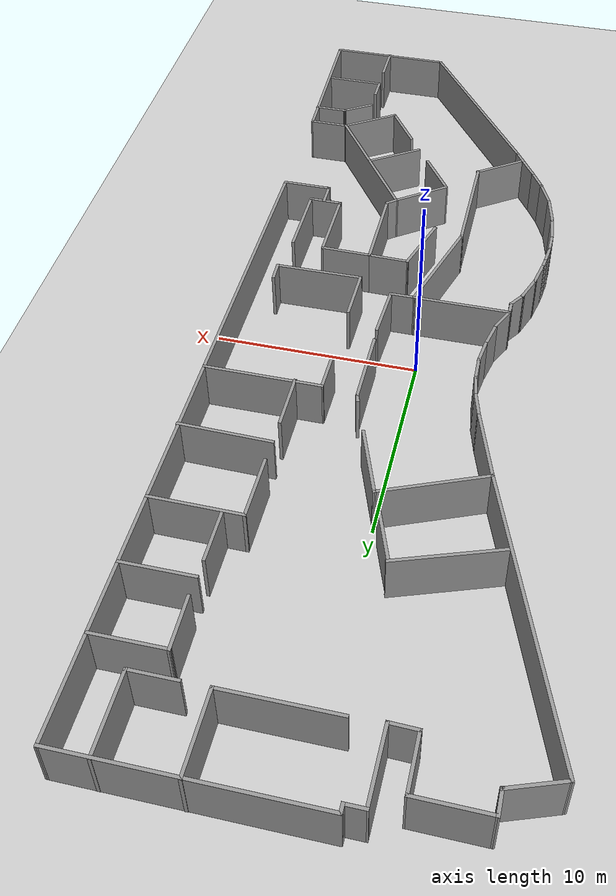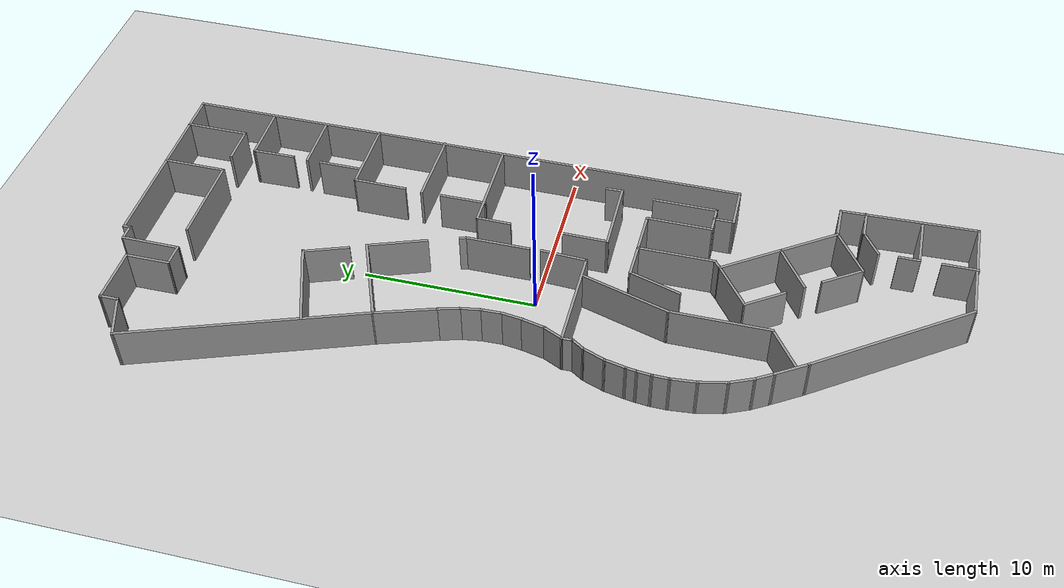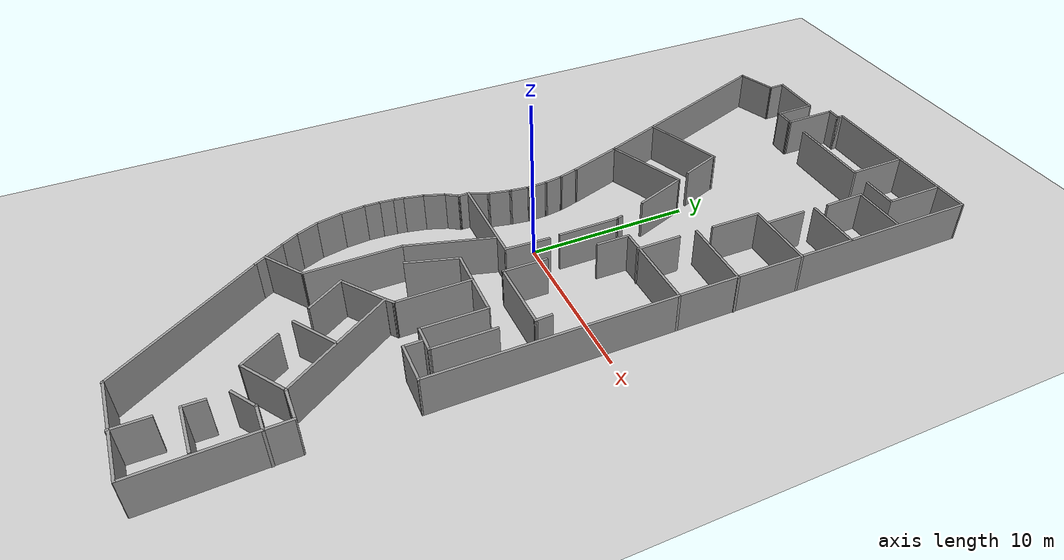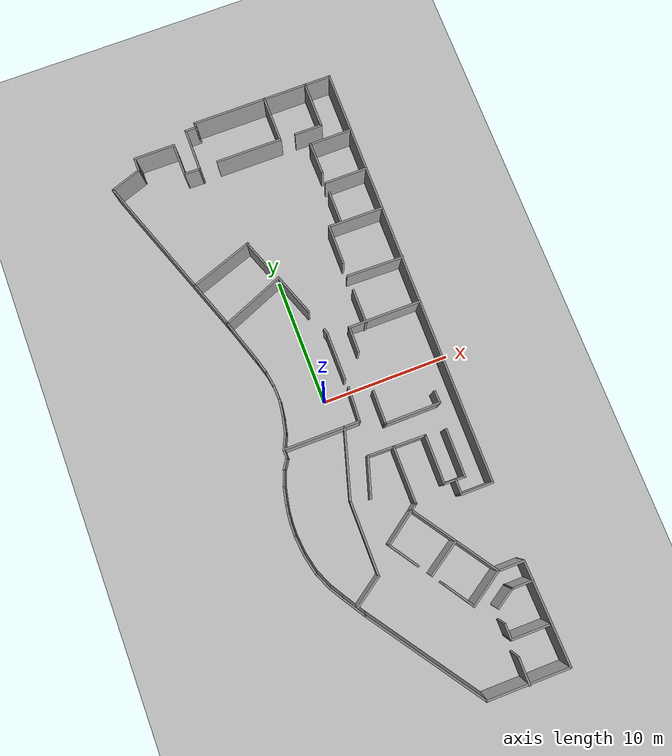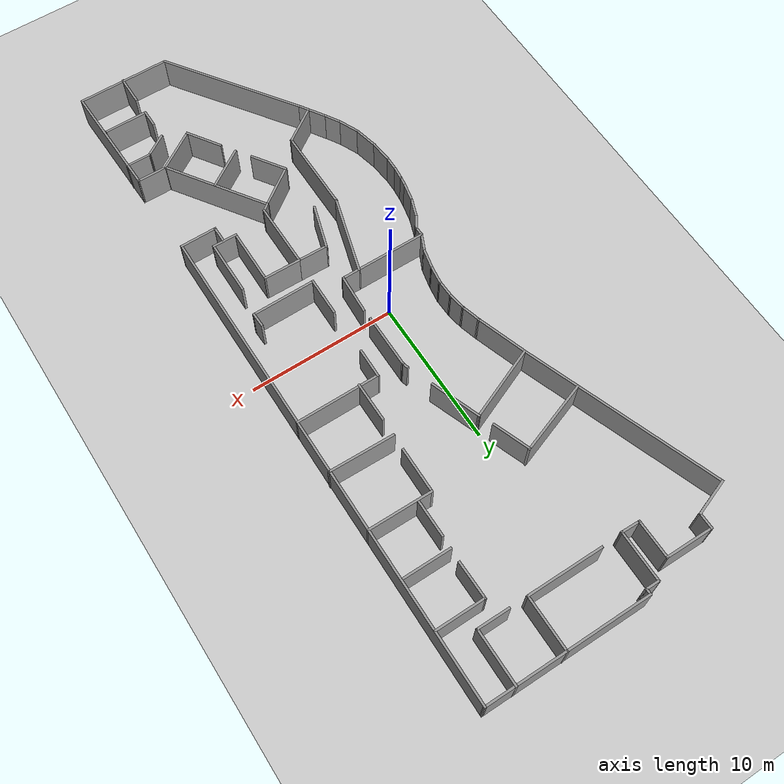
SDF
<?xml version="1.0" ?>
<sdf version="1.5">
  <world name="default">
    <include>
      <uri>model://ground_plane</uri>
    </include>
    <include>
      <uri>model://sun</uri>
    </include>
    <model name="office_map">
      <pose frame="">-0.033914 -0.016191 0 0 -0 0</pose>
      <link name="Wall_0">
        <collision name="Wall_0_Collision">
          <geometry>
            <box>
              <size>7.88022 0.15 2.5</size>
            </box>
          </geometry>
          <pose frame="">0 0 1.25 0 -0 0</pose>
        </collision>
        <visual name="Wall_0_Visual">
          <pose frame="">0 0 1.25 0 -0 0</pose>
          <geometry>
            <box>
              <size>7.88022 0.15 2.5</size>
            </box>
          </geometry>
          <material>
            <script>
              <uri>file://media/materials/scripts/gazebo.material</uri>
              <name>Gazebo/Grey</name>
            </script>
            <ambient>1 1 1 1</ambient>
          </material>
        </visual>
        <pose frame="">9.25987 -19.6495 0 0 -0 1.59958</pose>
      </link>
      <link name="Wall_1">
        <collision name="Wall_1_Collision">
          <geometry>
            <box>
              <size>2.09187 0.15 2.5</size>
            </box>
          </geometry>
          <pose frame="">0 0 1.25 0 -0 0</pose>
        </collision>
        <visual name="Wall_1_Visual">
          <pose frame="">0 0 1.25 0 -0 0</pose>
          <geometry>
            <box>
              <size>2.09187 0.15 2.5</size>
            </box>
          </geometry>
          <material>
            <script>
              <uri>file://media/materials/scripts/gazebo.material</uri>
              <name>Gazebo/Grey</name>
            </script>
            <ambient>1 1 1 1</ambient>
          </material>
        </visual>
        <pose frame="">8.17768 -15.786 0 0 -0 3.14159</pose>
      </link>
      <link name="Wall_10">
        <collision name="Wall_10_Collision">
          <geometry>
            <box>
              <size>1.25 0.15 2.5</size>
            </box>
          </geometry>
          <pose frame="">0 0 1.25 0 -0 0</pose>
        </collision>
        <visual name="Wall_10_Visual">
          <pose frame="">0 0 1.25 0 -0 0</pose>
          <geometry>
            <box>
              <size>1.25 0.15 2.5</size>
            </box>
          </geometry>
          <material>
            <script>
              <uri>file://media/materials/scripts/gazebo.material</uri>
              <name>Gazebo/Grey</name>
            </script>
            <ambient>1 1 1 1</ambient>
          </material>
        </visual>
        <pose frame="">6.78196 -9.39785 0 0 0 -1.5708</pose>
      </link>
      <link name="Wall_100">
        <collision name="Wall_100_Collision">
          <geometry>
            <box>
              <size>3.4361 0.15 2.5</size>
            </box>
          </geometry>
          <pose frame="">0 0 1.25 0 -0 0</pose>
        </collision>
        <visual name="Wall_100_Visual">
          <pose frame="">0 0 1.25 0 -0 0</pose>
          <geometry>
            <box>
              <size>3.4361 0.15 2.5</size>
            </box>
          </geometry>
          <material>
            <script>
              <uri>file://media/materials/scripts/gazebo.material</uri>
              <name>Gazebo/Grey</name>
            </script>
            <ambient>1 1 1 1</ambient>
          </material>
        </visual>
        <pose frame="">7.63548 18.8255 0 0 0 -3.13811</pose>
      </link>
      <link name="Wall_102">
        <collision name="Wall_102_Collision">
          <geometry>
            <box>
              <size>3.74938 0.15 2.5</size>
            </box>
          </geometry>
          <pose frame="">0 0 1.25 0 -0 0</pose>
        </collision>
        <visual name="Wall_102_Visual">
          <pose frame="">0 0 1.25 0 -0 0</pose>
          <geometry>
            <box>
              <size>3.74938 0.15 2.5</size>
            </box>
          </geometry>
          <material>
            <script>
              <uri>file://media/materials/scripts/gazebo.material</uri>
              <name>Gazebo/Grey</name>
            </script>
            <ambient>1 1 1 1</ambient>
          </material>
        </visual>
        <pose frame="">7.31203 21.7885 0 0 0 -1.5708</pose>
      </link>
      <link name="Wall_103">
        <collision name="Wall_103_Collision">
          <geometry>
            <box>
              <size>2.25 0.15 2.5</size>
            </box>
          </geometry>
          <pose frame="">0 0 1.25 0 -0 0</pose>
        </collision>
        <visual name="Wall_103_Visual">
          <pose frame="">0 0 1.25 0 -0 0</pose>
          <geometry>
            <box>
              <size>2.25 0.15 2.5</size>
            </box>
          </geometry>
          <material>
            <script>
              <uri>file://media/materials/scripts/gazebo.material</uri>
              <name>Gazebo/Grey</name>
            </script>
            <ambient>1 1 1 1</ambient>
          </material>
        </visual>
        <pose frame="">6.26202 19.9888 0 0 -0 3.14159</pose>
      </link>
      <link name="Wall_106">
        <collision name="Wall_106_Collision">
          <geometry>
            <box>
              <size>3.75 0.15 2.5</size>
            </box>
          </geometry>
          <pose frame="">0 0 1.25 0 -0 0</pose>
        </collision>
        <visual name="Wall_106_Visual">
          <pose frame="">0 0 1.25 0 -0 0</pose>
          <geometry>
            <box>
              <size>3.75 0.15 2.5</size>
            </box>
          </geometry>
          <material>
            <script>
              <uri>file://media/materials/scripts/gazebo.material</uri>
              <name>Gazebo/Grey</name>
            </script>
            <ambient>1 1 1 1</ambient>
          </material>
        </visual>
        <pose frame="">3.94477 21.7946 0 0 -0 1.5708</pose>
      </link>
      <link name="Wall_108">
        <collision name="Wall_108_Collision">
          <geometry>
            <box>
              <size>2.64996 0.15 2.5</size>
            </box>
          </geometry>
          <pose frame="">0 0 1.25 0 -0 0</pose>
        </collision>
        <visual name="Wall_108_Visual">
          <pose frame="">0 0 1.25 0 -0 0</pose>
          <geometry>
            <box>
              <size>2.64996 0.15 2.5</size>
            </box>
          </geometry>
          <material>
            <script>
              <uri>file://media/materials/scripts/gazebo.material</uri>
              <name>Gazebo/Grey</name>
            </script>
            <ambient>1 1 1 1</ambient>
          </material>
        </visual>
        <pose frame="">-0.792928 11.8183 0 0 0 -1.21455</pose>
      </link>
      <link name="Wall_11">
        <collision name="Wall_11_Collision">
          <geometry>
            <box>
              <size>2.55714 0.15 2.5</size>
            </box>
          </geometry>
          <pose frame="">0 0 1.25 0 -0 0</pose>
        </collision>
        <visual name="Wall_11_Visual">
          <pose frame="">0 0 1.25 0 -0 0</pose>
          <geometry>
            <box>
              <size>2.55714 0.15 2.5</size>
            </box>
          </geometry>
          <material>
            <script>
              <uri>file://media/materials/scripts/gazebo.material</uri>
              <name>Gazebo/Grey</name>
            </script>
            <ambient>1 1 1 1</ambient>
          </material>
        </visual>
        <pose frame="">7.98552 -9.944 0 0 -0 0.003199</pose>
      </link>
      <link name="Wall_110">
        <collision name="Wall_110_Collision">
          <geometry>
            <box>
              <size>2.5723 0.15 2.5</size>
            </box>
          </geometry>
          <pose frame="">0 0 1.25 0 -0 0</pose>
        </collision>
        <visual name="Wall_110_Visual">
          <pose frame="">0 0 1.25 0 -0 0</pose>
          <geometry>
            <box>
              <size>2.5723 0.15 2.5</size>
            </box>
          </geometry>
          <material>
            <script>
              <uri>file://media/materials/scripts/gazebo.material</uri>
              <name>Gazebo/Grey</name>
            </script>
            <ambient>1 1 1 1</ambient>
          </material>
        </visual>
        <pose frame="">6.01015 17.609 0 0 0 -1.55618</pose>
      </link>
      <link name="Wall_112">
        <collision name="Wall_112_Collision">
          <geometry>
            <box>
              <size>2.5 0.15 2.5</size>
            </box>
          </geometry>
          <pose frame="">0 0 1.25 0 -0 0</pose>
        </collision>
        <visual name="Wall_112_Visual">
          <pose frame="">0 0 1.25 0 -0 0</pose>
          <geometry>
            <box>
              <size>2.5 0.15 2.5</size>
            </box>
          </geometry>
          <material>
            <script>
              <uri>file://media/materials/scripts/gazebo.material</uri>
              <name>Gazebo/Grey</name>
            </script>
            <ambient>1 1 1 1</ambient>
          </material>
        </visual>
        <pose frame="">5.96354 13.4316 0 0 -0 1.5708</pose>
      </link>
      <link name="Wall_114">
        <collision name="Wall_114_Collision">
          <geometry>
            <box>
              <size>3.17015 0.15 2.5</size>
            </box>
          </geometry>
          <pose frame="">0 0 1.25 0 -0 0</pose>
        </collision>
        <visual name="Wall_114_Visual">
          <pose frame="">0 0 1.25 0 -0 0</pose>
          <geometry>
            <box>
              <size>3.17015 0.15 2.5</size>
            </box>
          </geometry>
          <material>
            <script>
              <uri>file://media/materials/scripts/gazebo.material</uri>
              <name>Gazebo/Grey</name>
            </script>
            <ambient>1 1 1 1</ambient>
          </material>
        </visual>
        <pose frame="">4.9929 10.6036 0 0 0 -1.57863</pose>
      </link>
      <link name="Wall_116">
        <collision name="Wall_116_Collision">
          <geometry>
            <box>
              <size>2.75 0.15 2.5</size>
            </box>
          </geometry>
          <pose frame="">0 0 1.25 0 -0 0</pose>
        </collision>
        <visual name="Wall_116_Visual">
          <pose frame="">0 0 1.25 0 -0 0</pose>
          <geometry>
            <box>
              <size>2.75 0.15 2.5</size>
            </box>
          </geometry>
          <material>
            <script>
              <uri>file://media/materials/scripts/gazebo.material</uri>
              <name>Gazebo/Grey</name>
            </script>
            <ambient>1 1 1 1</ambient>
          </material>
        </visual>
        <pose frame="">4.93454 5.53218 0 0 -0 1.5708</pose>
      </link>
      <link name="Wall_118">
        <collision name="Wall_118_Collision">
          <geometry>
            <box>
              <size>2.59614 0.15 2.5</size>
            </box>
          </geometry>
          <pose frame="">0 0 1.25 0 -0 0</pose>
        </collision>
        <visual name="Wall_118_Visual">
          <pose frame="">0 0 1.25 0 -0 0</pose>
          <geometry>
            <box>
              <size>2.59614 0.15 2.5</size>
            </box>
          </geometry>
          <material>
            <script>
              <uri>file://media/materials/scripts/gazebo.material</uri>
              <name>Gazebo/Grey</name>
            </script>
            <ambient>1 1 1 1</ambient>
          </material>
        </visual>
        <pose frame="">1.35341 -12.4642 0 0 0 -0.974956</pose>
      </link>
      <link name="Wall_120">
        <collision name="Wall_120_Collision">
          <geometry>
            <box>
              <size>2.60909 0.15 2.5</size>
            </box>
          </geometry>
          <pose frame="">0 0 1.25 0 -0 0</pose>
        </collision>
        <visual name="Wall_120_Visual">
          <pose frame="">0 0 1.25 0 -0 0</pose>
          <geometry>
            <box>
              <size>2.60909 0.15 2.5</size>
            </box>
          </geometry>
          <material>
            <script>
              <uri>file://media/materials/scripts/gazebo.material</uri>
              <name>Gazebo/Grey</name>
            </script>
            <ambient>1 1 1 1</ambient>
          </material>
        </visual>
        <pose frame="">4.01346 -16.3981 0 0 -0 2.16037</pose>
      </link>
      <link name="Wall_122">
        <collision name="Wall_122_Collision">
          <geometry>
            <box>
              <size>1.25 0.15 2.5</size>
            </box>
          </geometry>
          <pose frame="">0 0 1.25 0 -0 0</pose>
        </collision>
        <visual name="Wall_122_Visual">
          <pose frame="">0 0 1.25 0 -0 0</pose>
          <geometry>
            <box>
              <size>1.25 0.15 2.5</size>
            </box>
          </geometry>
          <material>
            <script>
              <uri>file://media/materials/scripts/gazebo.material</uri>
              <name>Gazebo/Grey</name>
            </script>
            <ambient>1 1 1 1</ambient>
          </material>
        </visual>
        <pose frame="">6.23529 -19.8542 0 0 -0 1.5708</pose>
      </link>
      <link name="Wall_124">
        <collision name="Wall_124_Collision">
          <geometry>
            <box>
              <size>2.06221 0.15 2.5</size>
            </box>
          </geometry>
          <pose frame="">0 0 1.25 0 -0 0</pose>
        </collision>
        <visual name="Wall_124_Visual">
          <pose frame="">0 0 1.25 0 -0 0</pose>
          <geometry>
            <box>
              <size>2.06221 0.15 2.5</size>
            </box>
          </geometry>
          <material>
            <script>
              <uri>file://media/materials/scripts/gazebo.material</uri>
              <name>Gazebo/Grey</name>
            </script>
            <ambient>1 1 1 1</ambient>
          </material>
        </visual>
        <pose frame="">6.25917 -22.6385 0 0 -0 1.5708</pose>
      </link>
      <link name="Wall_126">
        <collision name="Wall_126_Collision">
          <geometry>
            <box>
              <size>5.25 0.15 2.5</size>
            </box>
          </geometry>
          <pose frame="">0 0 1.25 0 -0 0</pose>
        </collision>
        <visual name="Wall_126_Visual">
          <pose frame="">0 0 1.25 0 -0 0</pose>
          <geometry>
            <box>
              <size>5.25 0.15 2.5</size>
            </box>
          </geometry>
          <material>
            <script>
              <uri>file://media/materials/scripts/gazebo.material</uri>
              <name>Gazebo/Grey</name>
            </script>
            <ambient>1 1 1 1</ambient>
          </material>
        </visual>
        <pose frame="">1.39478 19.9946 0 0 -0 3.14159</pose>
      </link>
      <link name="Wall_128">
        <collision name="Wall_128_Collision">
          <geometry>
            <box>
              <size>3.51932 0.15 2.5</size>
            </box>
          </geometry>
          <pose frame="">0 0 1.25 0 -0 0</pose>
        </collision>
        <visual name="Wall_128_Visual">
          <pose frame="">0 0 1.25 0 -0 0</pose>
          <geometry>
            <box>
              <size>3.51932 0.15 2.5</size>
            </box>
          </geometry>
          <material>
            <script>
              <uri>file://media/materials/scripts/gazebo.material</uri>
              <name>Gazebo/Grey</name>
            </script>
            <ambient>1 1 1 1</ambient>
          </material>
        </visual>
        <pose frame="">0.636535 8.13377 0 0 0 -1.21629</pose>
      </link>
      <link name="Wall_14">
        <collision name="Wall_14_Collision">
          <geometry>
            <box>
              <size>33.6655 0.15 2.5</size>
            </box>
          </geometry>
          <pose frame="">0 0 1.25 0 -0 0</pose>
        </collision>
        <visual name="Wall_14_Visual">
          <pose frame="">0 0 1.25 0 -0 0</pose>
          <geometry>
            <box>
              <size>33.6655 0.15 2.5</size>
            </box>
          </geometry>
          <material>
            <script>
              <uri>file://media/materials/scripts/gazebo.material</uri>
              <name>Gazebo/Grey</name>
            </script>
            <ambient>1 1 1 1</ambient>
          </material>
        </visual>
        <pose frame="">9.25769 6.81746 0 0 -0 1.5667</pose>
      </link>
      <link name="Wall_16">
        <collision name="Wall_16_Collision">
          <geometry>
            <box>
              <size>11.25 0.15 2.5</size>
            </box>
          </geometry>
          <pose frame="">0 0 1.25 0 -0 0</pose>
        </collision>
        <visual name="Wall_16_Visual">
          <pose frame="">0 0 1.25 0 -0 0</pose>
          <geometry>
            <box>
              <size>11.25 0.15 2.5</size>
            </box>
          </geometry>
          <material>
            <script>
              <uri>file://media/materials/scripts/gazebo.material</uri>
              <name>Gazebo/Grey</name>
            </script>
            <ambient>1 1 1 1</ambient>
          </material>
        </visual>
        <pose frame="">3.77631 23.5751 0 0 -0 3.14159</pose>
      </link>
      <link name="Wall_19">
        <collision name="Wall_19_Collision">
          <geometry>
            <box>
              <size>0.5 0.15 2.5</size>
            </box>
          </geometry>
          <pose frame="">0 0 1.25 0 -0 0</pose>
        </collision>
        <visual name="Wall_19_Visual">
          <pose frame="">0 0 1.25 0 -0 0</pose>
          <geometry>
            <box>
              <size>0.5 0.15 2.5</size>
            </box>
          </geometry>
          <material>
            <script>
              <uri>file://media/materials/scripts/gazebo.material</uri>
              <name>Gazebo/Grey</name>
            </script>
            <ambient>1 1 1 1</ambient>
          </material>
        </visual>
        <pose frame="">-1.77369 23.4001 0 0 0 -1.5708</pose>
      </link>
      <link name="Wall_2">
        <collision name="Wall_2_Collision">
          <geometry>
            <box>
              <size>7.48312 0.15 2.5</size>
            </box>
          </geometry>
          <pose frame="">0 0 1.25 0 -0 0</pose>
        </collision>
        <visual name="Wall_2_Visual">
          <pose frame="">0 0 1.25 0 -0 0</pose>
          <geometry>
            <box>
              <size>7.48312 0.15 2.5</size>
            </box>
          </geometry>
          <material>
            <script>
              <uri>file://media/materials/scripts/gazebo.material</uri>
              <name>Gazebo/Grey</name>
            </script>
            <ambient>1 1 1 1</ambient>
          </material>
        </visual>
        <pose frame="">5.1334 -12.7619 0 0 -0 2.1718</pose>
      </link>
      <link name="Wall_20">
        <collision name="Wall_20_Collision">
          <geometry>
            <box>
              <size>1 0.15 2.5</size>
            </box>
          </geometry>
          <pose frame="">0 0 1.25 0 -0 0</pose>
        </collision>
        <visual name="Wall_20_Visual">
          <pose frame="">0 0 1.25 0 -0 0</pose>
          <geometry>
            <box>
              <size>1 0.15 2.5</size>
            </box>
          </geometry>
          <material>
            <script>
              <uri>file://media/materials/scripts/gazebo.material</uri>
              <name>Gazebo/Grey</name>
            </script>
            <ambient>1 1 1 1</ambient>
          </material>
        </visual>
        <pose frame="">-2.19869 23.2251 0 0 -0 3.14159</pose>
      </link>
      <link name="Wall_21">
        <collision name="Wall_21_Collision">
          <geometry>
            <box>
              <size>3.46185 0.15 2.5</size>
            </box>
          </geometry>
          <pose frame="">0 0 1.25 0 -0 0</pose>
        </collision>
        <visual name="Wall_21_Visual">
          <pose frame="">0 0 1.25 0 -0 0</pose>
          <geometry>
            <box>
              <size>3.46185 0.15 2.5</size>
            </box>
          </geometry>
          <material>
            <script>
              <uri>file://media/materials/scripts/gazebo.material</uri>
              <name>Gazebo/Grey</name>
            </script>
            <ambient>1 1 1 1</ambient>
          </material>
        </visual>
        <pose frame="">-2.63065 21.5692 0 0 0 -1.575</pose>
      </link>
      <link name="Wall_22">
        <collision name="Wall_22_Collision">
          <geometry>
            <box>
              <size>1.35919 0.15 2.5</size>
            </box>
          </geometry>
          <pose frame="">0 0 1.25 0 -0 0</pose>
        </collision>
        <visual name="Wall_22_Visual">
          <pose frame="">0 0 1.25 0 -0 0</pose>
          <geometry>
            <box>
              <size>1.35919 0.15 2.5</size>
            </box>
          </geometry>
          <material>
            <script>
              <uri>file://media/materials/scripts/gazebo.material</uri>
              <name>Gazebo/Grey</name>
            </script>
            <ambient>1 1 1 1</ambient>
          </material>
        </visual>
        <pose frame="">-3.24176 19.9285 0 0 -0 3.11628</pose>
      </link>
      <link name="Wall_23">
        <collision name="Wall_23_Collision">
          <geometry>
            <box>
              <size>2.64315 0.15 2.5</size>
            </box>
          </geometry>
          <pose frame="">0 0 1.25 0 -0 0</pose>
        </collision>
        <visual name="Wall_23_Visual">
          <pose frame="">0 0 1.25 0 -0 0</pose>
          <geometry>
            <box>
              <size>2.64315 0.15 2.5</size>
            </box>
          </geometry>
          <material>
            <script>
              <uri>file://media/materials/scripts/gazebo.material</uri>
              <name>Gazebo/Grey</name>
            </script>
            <ambient>1 1 1 1</ambient>
          </material>
        </visual>
        <pose frame="">-3.85356 21.1904 0 0 -0 1.57693</pose>
      </link>
      <link name="Wall_27">
        <collision name="Wall_27_Collision">
          <geometry>
            <box>
              <size>3.31613 0.15 2.5</size>
            </box>
          </geometry>
          <pose frame="">0 0 1.25 0 -0 0</pose>
        </collision>
        <visual name="Wall_27_Visual">
          <pose frame="">0 0 1.25 0 -0 0</pose>
          <geometry>
            <box>
              <size>3.31613 0.15 2.5</size>
            </box>
          </geometry>
          <material>
            <script>
              <uri>file://media/materials/scripts/gazebo.material</uri>
              <name>Gazebo/Grey</name>
            </script>
            <ambient>1 1 1 1</ambient>
          </material>
        </visual>
        <pose frame="">-5.44426 22.4446 0 0 -0 3.13676</pose>
      </link>
      <link name="Wall_28">
        <collision name="Wall_28_Collision">
          <geometry>
            <box>
              <size>1.14368 0.15 2.5</size>
            </box>
          </geometry>
          <pose frame="">0 0 1.25 0 -0 0</pose>
        </collision>
        <visual name="Wall_28_Visual">
          <pose frame="">0 0 1.25 0 -0 0</pose>
          <geometry>
            <box>
              <size>1.14368 0.15 2.5</size>
            </box>
          </geometry>
          <material>
            <script>
              <uri>file://media/materials/scripts/gazebo.material</uri>
              <name>Gazebo/Grey</name>
            </script>
            <ambient>1 1 1 1</ambient>
          </material>
        </visual>
        <pose frame="">-7.0269 21.9554 0 0 0 -1.57</pose>
      </link>
      <link name="Wall_29">
        <collision name="Wall_29_Collision">
          <geometry>
            <box>
              <size>2.61815 0.15 2.5</size>
            </box>
          </geometry>
          <pose frame="">0 0 1.25 0 -0 0</pose>
        </collision>
        <visual name="Wall_29_Visual">
          <pose frame="">0 0 1.25 0 -0 0</pose>
          <geometry>
            <box>
              <size>2.61815 0.15 2.5</size>
            </box>
          </geometry>
          <material>
            <script>
              <uri>file://media/materials/scripts/gazebo.material</uri>
              <name>Gazebo/Grey</name>
            </script>
            <ambient>1 1 1 1</ambient>
          </material>
        </visual>
        <pose frame="">-8.18933 21.0454 0 0 0 -2.80013</pose>
      </link>
      <link name="Wall_3">
        <collision name="Wall_3_Collision">
          <geometry>
            <box>
              <size>0.696525 0.15 2.5</size>
            </box>
          </geometry>
          <pose frame="">0 0 1.25 0 -0 0</pose>
        </collision>
        <visual name="Wall_3_Visual">
          <pose frame="">0 0 1.25 0 -0 0</pose>
          <geometry>
            <box>
              <size>0.696525 0.15 2.5</size>
            </box>
          </geometry>
          <material>
            <script>
              <uri>file://media/materials/scripts/gazebo.material</uri>
              <name>Gazebo/Grey</name>
            </script>
            <ambient>1 1 1 1</ambient>
          </material>
        </visual>
        <pose frame="">3.27244 -9.56593 0 0 -0 0.680521</pose>
      </link>
      <link name="Wall_30">
        <collision name="Wall_30_Collision">
          <geometry>
            <box>
              <size>13.8523 0.15 2.5</size>
            </box>
          </geometry>
          <pose frame="">0 0 1.25 0 -0 0</pose>
        </collision>
        <visual name="Wall_30_Visual">
          <pose frame="">0 0 1.25 0 -0 0</pose>
          <geometry>
            <box>
              <size>13.8523 0.15 2.5</size>
            </box>
          </geometry>
          <material>
            <script>
              <uri>file://media/materials/scripts/gazebo.material</uri>
              <name>Gazebo/Grey</name>
            </script>
            <ambient>1 1 1 1</ambient>
          </material>
        </visual>
        <pose frame="">-7.01413 14.1922 0 0 0 -1.22254</pose>
      </link>
      <link name="Wall_32">
        <collision name="Wall_32_Collision">
          <geometry>
            <box>
              <size>3.60597 0.15 2.5</size>
            </box>
          </geometry>
          <pose frame="">0 0 1.25 0 -0 0</pose>
        </collision>
        <visual name="Wall_32_Visual">
          <pose frame="">0 0 1.25 0 -0 0</pose>
          <geometry>
            <box>
              <size>3.60597 0.15 2.5</size>
            </box>
          </geometry>
          <material>
            <script>
              <uri>file://media/materials/scripts/gazebo.material</uri>
              <name>Gazebo/Grey</name>
            </script>
            <ambient>1 1 1 1</ambient>
          </material>
        </visual>
        <pose frame="">-4.13043 6.1128 0 0 0 -1.24951</pose>
      </link>
      <link name="Wall_33">
        <collision name="Wall_33_Collision">
          <geometry>
            <box>
              <size>1.38956 0.15 2.5</size>
            </box>
          </geometry>
          <pose frame="">0 0 1.25 0 -0 0</pose>
        </collision>
        <visual name="Wall_33_Visual">
          <pose frame="">0 0 1.25 0 -0 0</pose>
          <geometry>
            <box>
              <size>1.38956 0.15 2.5</size>
            </box>
          </geometry>
          <material>
            <script>
              <uri>file://media/materials/scripts/gazebo.material</uri>
              <name>Gazebo/Grey</name>
            </script>
            <ambient>1 1 1 1</ambient>
          </material>
        </visual>
        <pose frame="">-3.41651 3.87673 0 0 0 -1.29589</pose>
      </link>
      <link name="Wall_34">
        <collision name="Wall_34_Collision">
          <geometry>
            <box>
              <size>1.24891 0.15 2.5</size>
            </box>
          </geometry>
          <pose frame="">0 0 1.25 0 -0 0</pose>
        </collision>
        <visual name="Wall_34_Visual">
          <pose frame="">0 0 1.25 0 -0 0</pose>
          <geometry>
            <box>
              <size>1.24891 0.15 2.5</size>
            </box>
          </geometry>
          <material>
            <script>
              <uri>file://media/materials/scripts/gazebo.material</uri>
              <name>Gazebo/Grey</name>
            </script>
            <ambient>1 1 1 1</ambient>
          </material>
        </visual>
        <pose frame="">-3.16414 2.73724 0 0 0 -1.41709</pose>
      </link>
      <link name="Wall_35">
        <collision name="Wall_35_Collision">
          <geometry>
            <box>
              <size>1.31283 0.15 2.5</size>
            </box>
          </geometry>
          <pose frame="">0 0 1.25 0 -0 0</pose>
        </collision>
        <visual name="Wall_35_Visual">
          <pose frame="">0 0 1.25 0 -0 0</pose>
          <geometry>
            <box>
              <size>1.31283 0.15 2.5</size>
            </box>
          </geometry>
          <material>
            <script>
              <uri>file://media/materials/scripts/gazebo.material</uri>
              <name>Gazebo/Grey</name>
            </script>
            <ambient>1 1 1 1</ambient>
          </material>
        </visual>
        <pose frame="">-3.06472 1.61305 0 0 0 -1.54449</pose>
      </link>
      <link name="Wall_36">
        <collision name="Wall_36_Collision">
          <geometry>
            <box>
              <size>1.27697 0.15 2.5</size>
            </box>
          </geometry>
          <pose frame="">0 0 1.25 0 -0 0</pose>
        </collision>
        <visual name="Wall_36_Visual">
          <pose frame="">0 0 1.25 0 -0 0</pose>
          <geometry>
            <box>
              <size>1.27697 0.15 2.5</size>
            </box>
          </geometry>
          <material>
            <script>
              <uri>file://media/materials/scripts/gazebo.material</uri>
              <name>Gazebo/Grey</name>
            </script>
            <ambient>1 1 1 1</ambient>
          </material>
        </visual>
        <pose frame="">-3.1259 0.473564 0 0 0 -1.70694</pose>
      </link>
      <link name="Wall_37">
        <collision name="Wall_37_Collision">
          <geometry>
            <box>
              <size>1.48217 0.15 2.5</size>
            </box>
          </geometry>
          <pose frame="">0 0 1.25 0 -0 0</pose>
        </collision>
        <visual name="Wall_37_Visual">
          <pose frame="">0 0 1.25 0 -0 0</pose>
          <geometry>
            <box>
              <size>1.48217 0.15 2.5</size>
            </box>
          </geometry>
          <material>
            <script>
              <uri>file://media/materials/scripts/gazebo.material</uri>
              <name>Gazebo/Grey</name>
            </script>
            <ambient>1 1 1 1</ambient>
          </material>
        </visual>
        <pose frame="">-3.34768 -0.73475 0 0 0 -1.79071</pose>
      </link>
      <link name="Wall_38">
        <collision name="Wall_38_Collision">
          <geometry>
            <box>
              <size>1.34752 0.15 2.5</size>
            </box>
          </geometry>
          <pose frame="">0 0 1.25 0 -0 0</pose>
        </collision>
        <visual name="Wall_38_Visual">
          <pose frame="">0 0 1.25 0 -0 0</pose>
          <geometry>
            <box>
              <size>1.34752 0.15 2.5</size>
            </box>
          </geometry>
          <material>
            <script>
              <uri>file://media/materials/scripts/gazebo.material</uri>
              <name>Gazebo/Grey</name>
            </script>
            <ambient>1 1 1 1</ambient>
          </material>
        </visual>
        <pose frame="">-3.74536 -1.92777 0 0 0 -2.00588</pose>
      </link>
      <link name="Wall_4">
        <collision name="Wall_4_Collision">
          <geometry>
            <box>
              <size>4.47875 0.15 2.5</size>
            </box>
          </geometry>
          <pose frame="">0 0 1.25 0 -0 0</pose>
        </collision>
        <visual name="Wall_4_Visual">
          <pose frame="">0 0 1.25 0 -0 0</pose>
          <geometry>
            <box>
              <size>4.47875 0.15 2.5</size>
            </box>
          </geometry>
          <material>
            <script>
              <uri>file://media/materials/scripts/gazebo.material</uri>
              <name>Gazebo/Grey</name>
            </script>
            <ambient>1 1 1 1</ambient>
          </material>
        </visual>
        <pose frame="">3.48484 -7.24985 0 0 -0 1.5708</pose>
      </link>
      <link name="Wall_40">
        <collision name="Wall_40_Collision">
          <geometry>
            <box>
              <size>0.75 0.15 2.5</size>
            </box>
          </geometry>
          <pose frame="">0 0 1.25 0 -0 0</pose>
        </collision>
        <visual name="Wall_40_Visual">
          <pose frame="">0 0 1.25 0 -0 0</pose>
          <geometry>
            <box>
              <size>0.75 0.15 2.5</size>
            </box>
          </geometry>
          <material>
            <script>
              <uri>file://media/materials/scripts/gazebo.material</uri>
              <name>Gazebo/Grey</name>
            </script>
            <ambient>1 1 1 1</ambient>
          </material>
        </visual>
        <pose frame="">-3.99773 -2.77074 0 0 0 -1.5708</pose>
      </link>
      <link name="Wall_41">
        <collision name="Wall_41_Collision">
          <geometry>
            <box>
              <size>0.98697 0.15 2.5</size>
            </box>
          </geometry>
          <pose frame="">0 0 1.25 0 -0 0</pose>
        </collision>
        <visual name="Wall_41_Visual">
          <pose frame="">0 0 1.25 0 -0 0</pose>
          <geometry>
            <box>
              <size>0.98697 0.15 2.5</size>
            </box>
          </geometry>
          <material>
            <script>
              <uri>file://media/materials/scripts/gazebo.material</uri>
              <name>Gazebo/Grey</name>
            </script>
            <ambient>1 1 1 1</ambient>
          </material>
        </visual>
        <pose frame="">-4.2293 -3.41932 0 0 0 -2.1572</pose>
      </link>
      <link name="Wall_42">
        <collision name="Wall_42_Collision">
          <geometry>
            <box>
              <size>1.4545 0.15 2.5</size>
            </box>
          </geometry>
          <pose frame="">0 0 1.25 0 -0 0</pose>
        </collision>
        <visual name="Wall_42_Visual">
          <pose frame="">0 0 1.25 0 -0 0</pose>
          <geometry>
            <box>
              <size>1.4545 0.15 2.5</size>
            </box>
          </geometry>
          <material>
            <script>
              <uri>file://media/materials/scripts/gazebo.material</uri>
              <name>Gazebo/Grey</name>
            </script>
            <ambient>1 1 1 1</ambient>
          </material>
        </visual>
        <pose frame="">-4.68698 -4.37969 0 0 0 -1.92479</pose>
      </link>
      <link name="Wall_43">
        <collision name="Wall_43_Collision">
          <geometry>
            <box>
              <size>1.34738 0.15 2.5</size>
            </box>
          </geometry>
          <pose frame="">0 0 1.25 0 -0 0</pose>
        </collision>
        <visual name="Wall_43_Visual">
          <pose frame="">0 0 1.25 0 -0 0</pose>
          <geometry>
            <box>
              <size>1.34738 0.15 2.5</size>
            </box>
          </geometry>
          <material>
            <script>
              <uri>file://media/materials/scripts/gazebo.material</uri>
              <name>Gazebo/Grey</name>
            </script>
            <ambient>1 1 1 1</ambient>
          </material>
        </visual>
        <pose frame="">-5.03944 -5.5767 0 0 0 -1.78344</pose>
      </link>
      <link name="Wall_44">
        <collision name="Wall_44_Collision">
          <geometry>
            <box>
              <size>0.755702 0.15 2.5</size>
            </box>
          </geometry>
          <pose frame="">0 0 1.25 0 -0 0</pose>
        </collision>
        <visual name="Wall_44_Visual">
          <pose frame="">0 0 1.25 0 -0 0</pose>
          <geometry>
            <box>
              <size>0.755702 0.15 2.5</size>
            </box>
          </geometry>
          <material>
            <script>
              <uri>file://media/materials/scripts/gazebo.material</uri>
              <name>Gazebo/Grey</name>
            </script>
            <ambient>1 1 1 1</ambient>
          </material>
        </visual>
        <pose frame="">-5.21234 -6.46116 0 0 0 -1.72511</pose>
      </link>
      <link name="Wall_45">
        <collision name="Wall_45_Collision">
          <geometry>
            <box>
              <size>0.951986 0.15 2.5</size>
            </box>
          </geometry>
          <pose frame="">0 0 1.25 0 -0 0</pose>
        </collision>
        <visual name="Wall_45_Visual">
          <pose frame="">0 0 1.25 0 -0 0</pose>
          <geometry>
            <box>
              <size>0.951986 0.15 2.5</size>
            </box>
          </geometry>
          <material>
            <script>
              <uri>file://media/materials/scripts/gazebo.material</uri>
              <name>Gazebo/Grey</name>
            </script>
            <ambient>1 1 1 1</ambient>
          </material>
        </visual>
        <pose frame="">-5.29879 -7.15941 0 0 0 -1.67047</pose>
      </link>
      <link name="Wall_46">
        <collision name="Wall_46_Collision">
          <geometry>
            <box>
              <size>1.08186 0.15 2.5</size>
            </box>
          </geometry>
          <pose frame="">0 0 1.25 0 -0 0</pose>
        </collision>
        <visual name="Wall_46_Visual">
          <pose frame="">0 0 1.25 0 -0 0</pose>
          <geometry>
            <box>
              <size>1.08186 0.15 2.5</size>
            </box>
          </geometry>
          <material>
            <script>
              <uri>file://media/materials/scripts/gazebo.material</uri>
              <name>Gazebo/Grey</name>
            </script>
            <ambient>1 1 1 1</ambient>
          </material>
        </visual>
        <pose frame="">-5.34534 -8.02392 0 0 0 -1.58508</pose>
      </link>
      <link name="Wall_47">
        <collision name="Wall_47_Collision">
          <geometry>
            <box>
              <size>1.57931 0.15 2.5</size>
            </box>
          </geometry>
          <pose frame="">0 0 1.25 0 -0 0</pose>
        </collision>
        <visual name="Wall_47_Visual">
          <pose frame="">0 0 1.25 0 -0 0</pose>
          <geometry>
            <box>
              <size>1.57931 0.15 2.5</size>
            </box>
          </geometry>
          <material>
            <script>
              <uri>file://media/materials/scripts/gazebo.material</uri>
              <name>Gazebo/Grey</name>
            </script>
            <ambient>1 1 1 1</ambient>
          </material>
        </visual>
        <pose frame="">-5.28549 -9.20098 0 0 0 -1.47761</pose>
      </link>
      <link name="Wall_48">
        <collision name="Wall_48_Collision">
          <geometry>
            <box>
              <size>1.71812 0.15 2.5</size>
            </box>
          </geometry>
          <pose frame="">0 0 1.25 0 -0 0</pose>
        </collision>
        <visual name="Wall_48_Visual">
          <pose frame="">0 0 1.25 0 -0 0</pose>
          <geometry>
            <box>
              <size>1.71812 0.15 2.5</size>
            </box>
          </geometry>
          <material>
            <script>
              <uri>file://media/materials/scripts/gazebo.material</uri>
              <name>Gazebo/Grey</name>
            </script>
            <ambient>1 1 1 1</ambient>
          </material>
        </visual>
        <pose frame="">-5.04608 -10.6773 0 0 0 -1.34845</pose>
      </link>
      <link name="Wall_49">
        <collision name="Wall_49_Collision">
          <geometry>
            <box>
              <size>1.53148 0.15 2.5</size>
            </box>
          </geometry>
          <pose frame="">0 0 1.25 0 -0 0</pose>
        </collision>
        <visual name="Wall_49_Visual">
          <pose frame="">0 0 1.25 0 -0 0</pose>
          <geometry>
            <box>
              <size>1.53148 0.15 2.5</size>
            </box>
          </geometry>
          <material>
            <script>
              <uri>file://media/materials/scripts/gazebo.material</uri>
              <name>Gazebo/Grey</name>
            </script>
            <ambient>1 1 1 1</ambient>
          </material>
        </visual>
        <pose frame="">-4.59388 -12.0738 0 0 0 -1.15453</pose>
      </link>
      <link name="Wall_5">
        <collision name="Wall_5_Collision">
          <geometry>
            <box>
              <size>2.59756 0.15 2.5</size>
            </box>
          </geometry>
          <pose frame="">0 0 1.25 0 -0 0</pose>
        </collision>
        <visual name="Wall_5_Visual">
          <pose frame="">0 0 1.25 0 -0 0</pose>
          <geometry>
            <box>
              <size>2.59756 0.15 2.5</size>
            </box>
          </geometry>
          <material>
            <script>
              <uri>file://media/materials/scripts/gazebo.material</uri>
              <name>Gazebo/Grey</name>
            </script>
            <ambient>1 1 1 1</ambient>
          </material>
        </visual>
        <pose frame="">4.70862 -5.08548 0 0 0 -0.016527</pose>
      </link>
      <link name="Wall_50">
        <collision name="Wall_50_Collision">
          <geometry>
            <box>
              <size>1.25399 0.15 2.5</size>
            </box>
          </geometry>
          <pose frame="">0 0 1.25 0 -0 0</pose>
        </collision>
        <visual name="Wall_50_Visual">
          <pose frame="">0 0 1.25 0 -0 0</pose>
          <geometry>
            <box>
              <size>1.25399 0.15 2.5</size>
            </box>
          </geometry>
          <material>
            <script>
              <uri>file://media/materials/scripts/gazebo.material</uri>
              <name>Gazebo/Grey</name>
            </script>
            <ambient>1 1 1 1</ambient>
          </material>
        </visual>
        <pose frame="">-4.02863 -13.1777 0 0 0 -1.02625</pose>
      </link>
      <link name="Wall_52">
        <collision name="Wall_52_Collision">
          <geometry>
            <box>
              <size>2.12195 0.15 2.5</size>
            </box>
          </geometry>
          <pose frame="">0 0 1.25 0 -0 0</pose>
        </collision>
        <visual name="Wall_52_Visual">
          <pose frame="">0 0 1.25 0 -0 0</pose>
          <geometry>
            <box>
              <size>2.12195 0.15 2.5</size>
            </box>
          </geometry>
          <material>
            <script>
              <uri>file://media/materials/scripts/gazebo.material</uri>
              <name>Gazebo/Grey</name>
            </script>
            <ambient>1 1 1 1</ambient>
          </material>
        </visual>
        <pose frame="">-3.20983 -14.4795 0 0 0 -0.999857</pose>
      </link>
      <link name="Wall_53">
        <collision name="Wall_53_Collision">
          <geometry>
            <box>
              <size>10.2025 0.15 2.5</size>
            </box>
          </geometry>
          <pose frame="">0 0 1.25 0 -0 0</pose>
        </collision>
        <visual name="Wall_53_Visual">
          <pose frame="">0 0 1.25 0 -0 0</pose>
          <geometry>
            <box>
              <size>10.2025 0.15 2.5</size>
            </box>
          </geometry>
          <material>
            <script>
              <uri>file://media/materials/scripts/gazebo.material</uri>
              <name>Gazebo/Grey</name>
            </script>
            <ambient>1 1 1 1</ambient>
          </material>
        </visual>
        <pose frame="">0.212667 -19.4216 0 0 0 -0.9583</pose>
      </link>
      <link name="Wall_55">
        <collision name="Wall_55_Collision">
          <geometry>
            <box>
              <size>6.40764 0.15 2.5</size>
            </box>
          </geometry>
          <pose frame="">0 0 1.25 0 -0 0</pose>
        </collision>
        <visual name="Wall_55_Visual">
          <pose frame="">0 0 1.25 0 -0 0</pose>
          <geometry>
            <box>
              <size>6.40764 0.15 2.5</size>
            </box>
          </geometry>
          <material>
            <script>
              <uri>file://media/materials/scripts/gazebo.material</uri>
              <name>Gazebo/Grey</name>
            </script>
            <ambient>1 1 1 1</ambient>
          </material>
        </visual>
        <pose frame="">6.23106 -23.5342 0 0 -0 0</pose>
      </link>
      <link name="Wall_57">
        <collision name="Wall_57_Collision">
          <geometry>
            <box>
              <size>3 0.15 2.5</size>
            </box>
          </geometry>
          <pose frame="">0 0 1.25 0 -0 0</pose>
        </collision>
        <visual name="Wall_57_Visual">
          <pose frame="">0 0 1.25 0 -0 0</pose>
          <geometry>
            <box>
              <size>3 0.15 2.5</size>
            </box>
          </geometry>
          <material>
            <script>
              <uri>file://media/materials/scripts/gazebo.material</uri>
              <name>Gazebo/Grey</name>
            </script>
            <ambient>1 1 1 1</ambient>
          </material>
        </visual>
        <pose frame="">7.66029 -20.4042 0 0 -0 0</pose>
      </link>
      <link name="Wall_59">
        <collision name="Wall_59_Collision">
          <geometry>
            <box>
              <size>1.75 0.15 2.5</size>
            </box>
          </geometry>
          <pose frame="">0 0 1.25 0 -0 0</pose>
        </collision>
        <visual name="Wall_59_Visual">
          <pose frame="">0 0 1.25 0 -0 0</pose>
          <geometry>
            <box>
              <size>1.75 0.15 2.5</size>
            </box>
          </geometry>
          <material>
            <script>
              <uri>file://media/materials/scripts/gazebo.material</uri>
              <name>Gazebo/Grey</name>
            </script>
            <ambient>1 1 1 1</ambient>
          </material>
        </visual>
        <pose frame="">8.41939 -17.2355 0 0 -0 3.14159</pose>
      </link>
      <link name="Wall_6">
        <collision name="Wall_6_Collision">
          <geometry>
            <box>
              <size>3.87241 0.15 2.5</size>
            </box>
          </geometry>
          <pose frame="">0 0 1.25 0 -0 0</pose>
        </collision>
        <visual name="Wall_6_Visual">
          <pose frame="">0 0 1.25 0 -0 0</pose>
          <geometry>
            <box>
              <size>3.87241 0.15 2.5</size>
            </box>
          </geometry>
          <material>
            <script>
              <uri>file://media/materials/scripts/gazebo.material</uri>
              <name>Gazebo/Grey</name>
            </script>
            <ambient>1 1 1 1</ambient>
          </material>
        </visual>
        <pose frame="">5.92228 -6.96666 0 0 0 -1.57623</pose>
      </link>
      <link name="Wall_60">
        <collision name="Wall_60_Collision">
          <geometry>
            <box>
              <size>1.79672 0.15 2.5</size>
            </box>
          </geometry>
          <pose frame="">0 0 1.25 0 -0 0</pose>
        </collision>
        <visual name="Wall_60_Visual">
          <pose frame="">0 0 1.25 0 -0 0</pose>
          <geometry>
            <box>
              <size>1.79672 0.15 2.5</size>
            </box>
          </geometry>
          <material>
            <script>
              <uri>file://media/materials/scripts/gazebo.material</uri>
              <name>Gazebo/Grey</name>
            </script>
            <ambient>1 1 1 1</ambient>
          </material>
        </visual>
        <pose frame="">6.92734 -17.6816 0 0 0 -2.56904</pose>
      </link>
      <link name="Wall_62">
        <collision name="Wall_62_Collision">
          <geometry>
            <box>
              <size>3.14479 0.15 2.5</size>
            </box>
          </geometry>
          <pose frame="">0 0 1.25 0 -0 0</pose>
        </collision>
        <visual name="Wall_62_Visual">
          <pose frame="">0 0 1.25 0 -0 0</pose>
          <geometry>
            <box>
              <size>3.14479 0.15 2.5</size>
            </box>
          </geometry>
          <material>
            <script>
              <uri>file://media/materials/scripts/gazebo.material</uri>
              <name>Gazebo/Grey</name>
            </script>
            <ambient>1 1 1 1</ambient>
          </material>
        </visual>
        <pose frame="">5.95192 -16.603 0 0 0 -2.56442</pose>
      </link>
      <link name="Wall_64">
        <collision name="Wall_64_Collision">
          <geometry>
            <box>
              <size>3.05959 0.15 2.5</size>
            </box>
          </geometry>
          <pose frame="">0 0 1.25 0 -0 0</pose>
        </collision>
        <visual name="Wall_64_Visual">
          <pose frame="">0 0 1.25 0 -0 0</pose>
          <geometry>
            <box>
              <size>3.05959 0.15 2.5</size>
            </box>
          </geometry>
          <material>
            <script>
              <uri>file://media/materials/scripts/gazebo.material</uri>
              <name>Gazebo/Grey</name>
            </script>
            <ambient>1 1 1 1</ambient>
          </material>
        </visual>
        <pose frame="">3.94337 -13.6362 0 0 0 -2.55945</pose>
      </link>
      <link name="Wall_66">
        <collision name="Wall_66_Collision">
          <geometry>
            <box>
              <size>3.09356 0.15 2.5</size>
            </box>
          </geometry>
          <pose frame="">0 0 1.25 0 -0 0</pose>
        </collision>
        <visual name="Wall_66_Visual">
          <pose frame="">0 0 1.25 0 -0 0</pose>
          <geometry>
            <box>
              <size>3.09356 0.15 2.5</size>
            </box>
          </geometry>
          <material>
            <script>
              <uri>file://media/materials/scripts/gazebo.material</uri>
              <name>Gazebo/Grey</name>
            </script>
            <ambient>1 1 1 1</ambient>
          </material>
        </visual>
        <pose frame="">1.86353 -10.5949 0 0 0 -2.52004</pose>
      </link>
      <link name="Wall_68">
        <collision name="Wall_68_Collision">
          <geometry>
            <box>
              <size>2.87204 0.15 2.5</size>
            </box>
          </geometry>
          <pose frame="">0 0 1.25 0 -0 0</pose>
        </collision>
        <visual name="Wall_68_Visual">
          <pose frame="">0 0 1.25 0 -0 0</pose>
          <geometry>
            <box>
              <size>2.87204 0.15 2.5</size>
            </box>
          </geometry>
          <material>
            <script>
              <uri>file://media/materials/scripts/gazebo.material</uri>
              <name>Gazebo/Grey</name>
            </script>
            <ambient>1 1 1 1</ambient>
          </material>
        </visual>
        <pose frame="">-1.93254 -13.9438 0 0 -0 0.600541</pose>
      </link>
      <link name="Wall_69">
        <collision name="Wall_69_Collision">
          <geometry>
            <box>
              <size>5.75 0.15 2.5</size>
            </box>
          </geometry>
          <pose frame="">0 0 1.25 0 -0 0</pose>
        </collision>
        <visual name="Wall_69_Visual">
          <pose frame="">0 0 1.25 0 -0 0</pose>
          <geometry>
            <box>
              <size>5.75 0.15 2.5</size>
            </box>
          </geometry>
          <material>
            <script>
              <uri>file://media/materials/scripts/gazebo.material</uri>
              <name>Gazebo/Grey</name>
            </script>
            <ambient>1 1 1 1</ambient>
          </material>
        </visual>
        <pose frame="">-0.809655 -10.3747 0 0 -0 1.5708</pose>
      </link>
      <link name="Wall_7">
        <collision name="Wall_7_Collision">
          <geometry>
            <box>
              <size>1.72777 0.15 2.5</size>
            </box>
          </geometry>
          <pose frame="">0 0 1.25 0 -0 0</pose>
        </collision>
        <visual name="Wall_7_Visual">
          <pose frame="">0 0 1.25 0 -0 0</pose>
          <geometry>
            <box>
              <size>1.72777 0.15 2.5</size>
            </box>
          </geometry>
          <material>
            <script>
              <uri>file://media/materials/scripts/gazebo.material</uri>
              <name>Gazebo/Grey</name>
            </script>
            <ambient>1 1 1 1</ambient>
          </material>
        </visual>
        <pose frame="">6.70105 -8.83773 0 0 0 -0.01282</pose>
      </link>
      <link name="Wall_70">
        <collision name="Wall_70_Collision">
          <geometry>
            <box>
              <size>5.47373 0.15 2.5</size>
            </box>
          </geometry>
          <pose frame="">0 0 1.25 0 -0 0</pose>
        </collision>
        <visual name="Wall_70_Visual">
          <pose frame="">0 0 1.25 0 -0 0</pose>
          <geometry>
            <box>
              <size>5.47373 0.15 2.5</size>
            </box>
          </geometry>
          <material>
            <script>
              <uri>file://media/materials/scripts/gazebo.material</uri>
              <name>Gazebo/Grey</name>
            </script>
            <ambient>1 1 1 1</ambient>
          </material>
        </visual>
        <pose frame="">-0.055939 -5.02177 0 0 -0 1.28371</pose>
      </link>
      <link name="Wall_72">
        <collision name="Wall_72_Collision">
          <geometry>
            <box>
              <size>3.1763 0.15 2.5</size>
            </box>
          </geometry>
          <pose frame="">0 0 1.25 0 -0 0</pose>
        </collision>
        <visual name="Wall_72_Visual">
          <pose frame="">0 0 1.25 0 -0 0</pose>
          <geometry>
            <box>
              <size>3.1763 0.15 2.5</size>
            </box>
          </geometry>
          <material>
            <script>
              <uri>file://media/materials/scripts/gazebo.material</uri>
              <name>Gazebo/Grey</name>
            </script>
            <ambient>1 1 1 1</ambient>
          </material>
        </visual>
        <pose frame="">1.08233 -6.46816 0 0 -0 1.27155</pose>
      </link>
      <link name="Wall_73">
        <collision name="Wall_73_Collision">
          <geometry>
            <box>
              <size>2.1069 0.15 2.5</size>
            </box>
          </geometry>
          <pose frame="">0 0 1.25 0 -0 0</pose>
        </collision>
        <visual name="Wall_73_Visual">
          <pose frame="">0 0 1.25 0 -0 0</pose>
          <geometry>
            <box>
              <size>2.1069 0.15 2.5</size>
            </box>
          </geometry>
          <material>
            <script>
              <uri>file://media/materials/scripts/gazebo.material</uri>
              <name>Gazebo/Grey</name>
            </script>
            <ambient>1 1 1 1</ambient>
          </material>
        </visual>
        <pose frame="">2.50662 -5.04375 0 0 0 -0.021975</pose>
      </link>
      <link name="Wall_75">
        <collision name="Wall_75_Collision">
          <geometry>
            <box>
              <size>2.67283 0.15 2.5</size>
            </box>
          </geometry>
          <pose frame="">0 0 1.25 0 -0 0</pose>
        </collision>
        <visual name="Wall_75_Visual">
          <pose frame="">0 0 1.25 0 -0 0</pose>
          <geometry>
            <box>
              <size>2.67283 0.15 2.5</size>
            </box>
          </geometry>
          <material>
            <script>
              <uri>file://media/materials/scripts/gazebo.material</uri>
              <name>Gazebo/Grey</name>
            </script>
            <ambient>1 1 1 1</ambient>
          </material>
        </visual>
        <pose frame="">3.57421 -2.03815 0 0 0 -1.58299</pose>
      </link>
      <link name="Wall_76">
        <collision name="Wall_76_Collision">
          <geometry>
            <box>
              <size>4.39553 0.15 2.5</size>
            </box>
          </geometry>
          <pose frame="">0 0 1.25 0 -0 0</pose>
        </collision>
        <visual name="Wall_76_Visual">
          <pose frame="">0 0 1.25 0 -0 0</pose>
          <geometry>
            <box>
              <size>4.39553 0.15 2.5</size>
            </box>
          </geometry>
          <material>
            <script>
              <uri>file://media/materials/scripts/gazebo.material</uri>
              <name>Gazebo/Grey</name>
            </script>
            <ambient>1 1 1 1</ambient>
          </material>
        </visual>
        <pose frame="">5.68154 -3.28409 0 0 -0 0.007246</pose>
      </link>
      <link name="Wall_77">
        <collision name="Wall_77_Collision">
          <geometry>
            <box>
              <size>1.04268 0.15 2.5</size>
            </box>
          </geometry>
          <pose frame="">0 0 1.25 0 -0 0</pose>
        </collision>
        <visual name="Wall_77_Visual">
          <pose frame="">0 0 1.25 0 -0 0</pose>
          <geometry>
            <box>
              <size>1.04268 0.15 2.5</size>
            </box>
          </geometry>
          <material>
            <script>
              <uri>file://media/materials/scripts/gazebo.material</uri>
              <name>Gazebo/Grey</name>
            </script>
            <ambient>1 1 1 1</ambient>
          </material>
        </visual>
        <pose frame="">7.78887 -2.82263 0 0 -0 1.60526</pose>
      </link>
      <link name="Wall_79">
        <collision name="Wall_79_Collision">
          <geometry>
            <box>
              <size>5.75 0.15 2.5</size>
            </box>
          </geometry>
          <pose frame="">0 0 1.25 0 -0 0</pose>
        </collision>
        <visual name="Wall_79_Visual">
          <pose frame="">0 0 1.25 0 -0 0</pose>
          <geometry>
            <box>
              <size>5.75 0.15 2.5</size>
            </box>
          </geometry>
          <material>
            <script>
              <uri>file://media/materials/scripts/gazebo.material</uri>
              <name>Gazebo/Grey</name>
            </script>
            <ambient>1 1 1 1</ambient>
          </material>
        </visual>
        <pose frame="">6.45015 4.29922 0 0 -0 3.14159</pose>
      </link>
      <link name="Wall_8">
        <collision name="Wall_8_Collision">
          <geometry>
            <box>
              <size>3.77083 0.15 2.5</size>
            </box>
          </geometry>
          <pose frame="">0 0 1.25 0 -0 0</pose>
        </collision>
        <visual name="Wall_8_Visual">
          <pose frame="">0 0 1.25 0 -0 0</pose>
          <geometry>
            <box>
              <size>3.77083 0.15 2.5</size>
            </box>
          </geometry>
          <material>
            <script>
              <uri>file://media/materials/scripts/gazebo.material</uri>
              <name>Gazebo/Grey</name>
            </script>
            <ambient>1 1 1 1</ambient>
          </material>
        </visual>
        <pose frame="">7.50005 -7.03746 0 0 -0 1.56521</pose>
      </link>
      <link name="Wall_80">
        <collision name="Wall_80_Collision">
          <geometry>
            <box>
              <size>2.0576 0.15 2.5</size>
            </box>
          </geometry>
          <pose frame="">0 0 1.25 0 -0 0</pose>
        </collision>
        <visual name="Wall_80_Visual">
          <pose frame="">0 0 1.25 0 -0 0</pose>
          <geometry>
            <box>
              <size>2.0576 0.15 2.5</size>
            </box>
          </geometry>
          <material>
            <script>
              <uri>file://media/materials/scripts/gazebo.material</uri>
              <name>Gazebo/Grey</name>
            </script>
            <ambient>1 1 1 1</ambient>
          </material>
        </visual>
        <pose frame="">3.63525 3.34554 0 0 0 -1.58642</pose>
      </link>
      <link name="Wall_82">
        <collision name="Wall_82_Collision">
          <geometry>
            <box>
              <size>6 0.15 2.5</size>
            </box>
          </geometry>
          <pose frame="">0 0 1.25 0 -0 0</pose>
        </collision>
        <visual name="Wall_82_Visual">
          <pose frame="">0 0 1.25 0 -0 0</pose>
          <geometry>
            <box>
              <size>6 0.15 2.5</size>
            </box>
          </geometry>
          <material>
            <script>
              <uri>file://media/materials/scripts/gazebo.material</uri>
              <name>Gazebo/Grey</name>
            </script>
            <ambient>1 1 1 1</ambient>
          </material>
        </visual>
        <pose frame="">-1.07273 -2.47074 0 0 -0 0</pose>
      </link>
      <link name="Wall_83">
        <collision name="Wall_83_Collision">
          <geometry>
            <box>
              <size>2.73973 0.15 2.5</size>
            </box>
          </geometry>
          <pose frame="">0 0 1.25 0 -0 0</pose>
        </collision>
        <visual name="Wall_83_Visual">
          <pose frame="">0 0 1.25 0 -0 0</pose>
          <geometry>
            <box>
              <size>2.73973 0.15 2.5</size>
            </box>
          </geometry>
          <material>
            <script>
              <uri>file://media/materials/scripts/gazebo.material</uri>
              <name>Gazebo/Grey</name>
            </script>
            <ambient>1 1 1 1</ambient>
          </material>
        </visual>
        <pose frame="">1.92107 -1.17771 0 0 -0 1.51764</pose>
      </link>
      <link name="Wall_85">
        <collision name="Wall_85_Collision">
          <geometry>
            <box>
              <size>3.75 0.15 2.5</size>
            </box>
          </geometry>
          <pose frame="">0 0 1.25 0 -0 0</pose>
        </collision>
        <visual name="Wall_85_Visual">
          <pose frame="">0 0 1.25 0 -0 0</pose>
          <geometry>
            <box>
              <size>3.75 0.15 2.5</size>
            </box>
          </geometry>
          <material>
            <script>
              <uri>file://media/materials/scripts/gazebo.material</uri>
              <name>Gazebo/Grey</name>
            </script>
            <ambient>1 1 1 1</ambient>
          </material>
        </visual>
        <pose frame="">1.9591 2.65366 0 0 -0 1.5708</pose>
      </link>
      <link name="Wall_86">
        <collision name="Wall_86_Collision">
          <geometry>
            <box>
              <size>0.5 0.15 2.5</size>
            </box>
          </geometry>
          <pose frame="">0 0 1.25 0 -0 0</pose>
        </collision>
        <visual name="Wall_86_Visual">
          <pose frame="">0 0 1.25 0 -0 0</pose>
          <geometry>
            <box>
              <size>0.5 0.15 2.5</size>
            </box>
          </geometry>
          <material>
            <script>
              <uri>file://media/materials/scripts/gazebo.material</uri>
              <name>Gazebo/Grey</name>
            </script>
            <ambient>1 1 1 1</ambient>
          </material>
        </visual>
        <pose frame="">1.91381 4.6227 0 0 -0 1.8326</pose>
      </link>
      <link name="Wall_88">
        <collision name="Wall_88_Collision">
          <geometry>
            <box>
              <size>5.26851 0.15 2.5</size>
            </box>
          </geometry>
          <pose frame="">0 0 1.25 0 -0 0</pose>
        </collision>
        <visual name="Wall_88_Visual">
          <pose frame="">0 0 1.25 0 -0 0</pose>
          <geometry>
            <box>
              <size>5.26851 0.15 2.5</size>
            </box>
          </geometry>
          <material>
            <script>
              <uri>file://media/materials/scripts/gazebo.material</uri>
              <name>Gazebo/Grey</name>
            </script>
            <ambient>1 1 1 1</ambient>
          </material>
        </visual>
        <pose frame="">-2.31218 8.73302 0 0 -0 0.393235</pose>
      </link>
      <link name="Wall_92">
        <collision name="Wall_92_Collision">
          <geometry>
            <box>
              <size>5.20971 0.15 2.5</size>
            </box>
          </geometry>
          <pose frame="">0 0 1.25 0 -0 0</pose>
        </collision>
        <visual name="Wall_92_Visual">
          <pose frame="">0 0 1.25 0 -0 0</pose>
          <geometry>
            <box>
              <size>5.20971 0.15 2.5</size>
            </box>
          </geometry>
          <material>
            <script>
              <uri>file://media/materials/scripts/gazebo.material</uri>
              <name>Gazebo/Grey</name>
            </script>
            <ambient>1 1 1 1</ambient>
          </material>
        </visual>
        <pose frame="">-3.59379 12.1902 0 0 0 -2.80061</pose>
      </link>
      <link name="Wall_94">
        <collision name="Wall_94_Collision">
          <geometry>
            <box>
              <size>4.51859 0.15 2.5</size>
            </box>
          </geometry>
          <pose frame="">0 0 1.25 0 -0 0</pose>
        </collision>
        <visual name="Wall_94_Visual">
          <pose frame="">0 0 1.25 0 -0 0</pose>
          <geometry>
            <box>
              <size>4.51859 0.15 2.5</size>
            </box>
          </geometry>
          <material>
            <script>
              <uri>file://media/materials/scripts/gazebo.material</uri>
              <name>Gazebo/Grey</name>
            </script>
            <ambient>1 1 1 1</ambient>
          </material>
        </visual>
        <pose frame="">7.12744 7.97551 0 0 -0 3.12047</pose>
      </link>
      <link name="Wall_96">
        <collision name="Wall_96_Collision">
          <geometry>
            <box>
              <size>4.4263 0.15 2.5</size>
            </box>
          </geometry>
          <pose frame="">0 0 1.25 0 -0 0</pose>
        </collision>
        <visual name="Wall_96_Visual">
          <pose frame="">0 0 1.25 0 -0 0</pose>
          <geometry>
            <box>
              <size>4.4263 0.15 2.5</size>
            </box>
          </geometry>
          <material>
            <script>
              <uri>file://media/materials/scripts/gazebo.material</uri>
              <name>Gazebo/Grey</name>
            </script>
            <ambient>1 1 1 1</ambient>
          </material>
        </visual>
        <pose frame="">7.14282 12.0979 0 0 -0 3.1344</pose>
      </link>
      <link name="Wall_98">
        <collision name="Wall_98_Collision">
          <geometry>
            <box>
              <size>3.43608 0.15 2.5</size>
            </box>
          </geometry>
          <pose frame="">0 0 1.25 0 -0 0</pose>
        </collision>
        <visual name="Wall_98_Visual">
          <pose frame="">0 0 1.25 0 -0 0</pose>
          <geometry>
            <box>
              <size>3.43608 0.15 2.5</size>
            </box>
          </geometry>
          <material>
            <script>
              <uri>file://media/materials/scripts/gazebo.material</uri>
              <name>Gazebo/Grey</name>
            </script>
            <ambient>1 1 1 1</ambient>
          </material>
        </visual>
        <pose frame="">7.63548 15.4694 0 0 0 -3.13984</pose>
      </link>
      <static>1</static>
    </model>
    <gui>
      <camera name="user_camera">
        <pose frame="">-23.724 1.265 49.15 0 1.111914 -0.005627</pose>
        <view_controller>orbit</view_controller>
        <projection_type>perspective</projection_type>
      </camera>
    </gui>

  </world>
</sdf>
